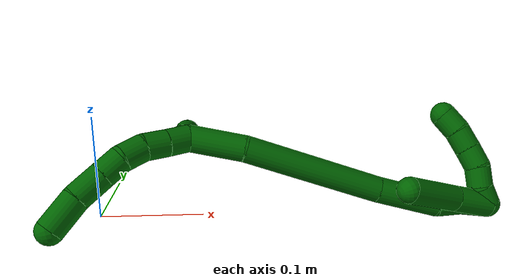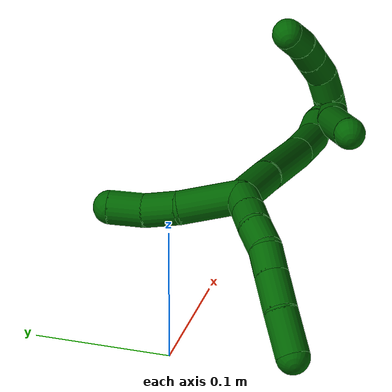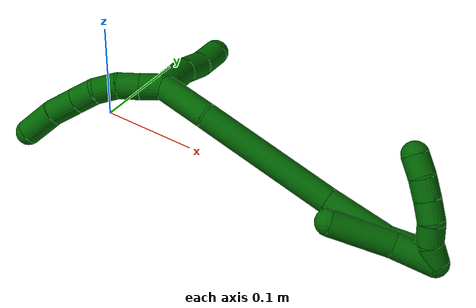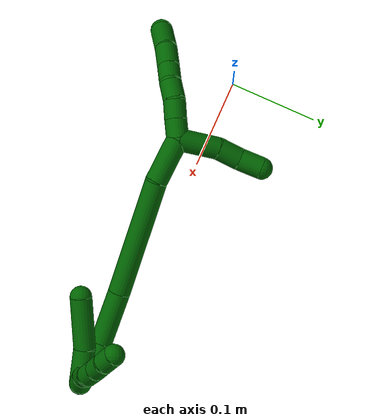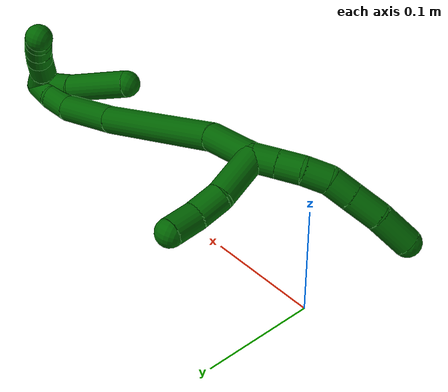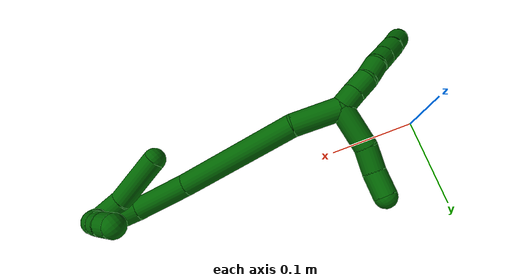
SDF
<sdf version="1.7">
 <world name="default">
  <model name="6">
   <static>0</static>
   <link name="6">
    <collision name="collision-cylinder-e_1_2_8">
     <pose>-0.000379 -0.00167 -0.01076 2.98758 -0.034787 -0.44346</pose>
     <geometry><cylinder><radius>0.0125</radius><length>0.021791</length></cylinder></geometry>
     <surface>
      <friction><ode><mu>1.16</mu><mu2>1.16</mu2><slip1>0</slip1><slip2>0</slip2></ode></friction>
      <contact><ode><kp>1e+06</kp><kd>1</kd><max_vel>0</max_vel><min_depth>0.001</min_depth></ode></contact>
     </surface>
    </collision>
    <visual name="visual-cylinder-e_1_2_8">
     <pose>-0.000379 -0.00167 -0.01076 2.98758 -0.034787 -0.44346</pose>
     <geometry><cylinder><radius>0.0125</radius><length>0.021791</length></cylinder></geometry>
     <material><ambient>0 0.392157 0.003922 1</ambient></material>
    </visual>
    <collision name="collision-cylinder-e_2_8_9">
     <pose>-0.001469 -0.004781 -0.032241 3.00804 -0.065629 -0.912621</pose>
     <geometry><cylinder><radius>0.0125</radius><length>0.021682</length></cylinder></geometry>
     <surface>
      <friction><ode><mu>1.16</mu><mu2>1.16</mu2><slip1>0</slip1><slip2>0</slip2></ode></friction>
      <contact><ode><kp>1e+06</kp><kd>1</kd><max_vel>0</max_vel><min_depth>0.001</min_depth></ode></contact>
     </surface>
    </collision>
    <visual name="visual-cylinder-e_2_8_9">
     <pose>-0.001469 -0.004781 -0.032241 3.00804 -0.065629 -0.912621</pose>
     <geometry><cylinder><radius>0.0125</radius><length>0.021682</length></cylinder></geometry>
     <material><ambient>0 0.392157 0.003922 1</ambient></material>
    </visual>
    <collision name="collision-cylinder-e_3_9_10">
     <pose>0.00014 -0.007816 -0.05373 2.99463 0.210013 1.92218</pose>
     <geometry><cylinder><radius>0.0125</radius><length>0.022259</length></cylinder></geometry>
     <surface>
      <friction><ode><mu>1.16</mu><mu2>1.16</mu2><slip1>0</slip1><slip2>0</slip2></ode></friction>
      <contact><ode><kp>1e+06</kp><kd>1</kd><max_vel>0</max_vel><min_depth>0.001</min_depth></ode></contact>
     </surface>
    </collision>
    <visual name="visual-cylinder-e_3_9_10">
     <pose>0.00014 -0.007816 -0.05373 2.99463 0.210013 1.92218</pose>
     <geometry><cylinder><radius>0.0125</radius><length>0.022259</length></cylinder></geometry>
     <material><ambient>0 0.392157 0.003922 1</ambient></material>
    </visual>
    <collision name="collision-cylinder-e_4_10_11">
     <pose>0.006925 -0.008512 -0.074248 -3.04974 0.427794 -2.72461</pose>
     <geometry><cylinder><radius>0.0125</radius><length>0.021524</length></cylinder></geometry>
     <surface>
      <friction><ode><mu>1.16</mu><mu2>1.16</mu2><slip1>0</slip1><slip2>0</slip2></ode></friction>
      <contact><ode><kp>1e+06</kp><kd>1</kd><max_vel>0</max_vel><min_depth>0.001</min_depth></ode></contact>
     </surface>
    </collision>
    <visual name="visual-cylinder-e_4_10_11">
     <pose>0.006925 -0.008512 -0.074248 -3.04974 0.427794 -2.72461</pose>
     <geometry><cylinder><radius>0.0125</radius><length>0.021524</length></cylinder></geometry>
     <material><ambient>0 0.392157 0.003922 1</ambient></material>
    </visual>
    <collision name="collision-cylinder-e_5_11_12">
     <pose>0.017389 -0.006546 -0.096913 -3.05909 0.433599 -2.77113</pose>
     <geometry><cylinder><radius>0.0125</radius><length>0.02856</length></cylinder></geometry>
     <surface>
      <friction><ode><mu>1.16</mu><mu2>1.16</mu2><slip1>0</slip1><slip2>0</slip2></ode></friction>
      <contact><ode><kp>1e+06</kp><kd>1</kd><max_vel>0</max_vel><min_depth>0.001</min_depth></ode></contact>
     </surface>
    </collision>
    <visual name="visual-cylinder-e_5_11_12">
     <pose>0.017389 -0.006546 -0.096913 -3.05909 0.433599 -2.77113</pose>
     <geometry><cylinder><radius>0.0125</radius><length>0.02856</length></cylinder></geometry>
     <material><ambient>0 0.392157 0.003922 1</ambient></material>
    </visual>
    <collision name="collision-cylinder-e_6_12_6">
     <pose>0.03308 -0.003757 -0.123802 -3.01908 0.602824 -2.75201</pose>
     <geometry><cylinder><radius>0.0125</radius><length>0.034185</length></cylinder></geometry>
     <surface>
      <friction><ode><mu>1.16</mu><mu2>1.16</mu2><slip1>0</slip1><slip2>0</slip2></ode></friction>
      <contact><ode><kp>1e+06</kp><kd>1</kd><max_vel>0</max_vel><min_depth>0.001</min_depth></ode></contact>
     </surface>
    </collision>
    <visual name="visual-cylinder-e_6_12_6">
     <pose>0.03308 -0.003757 -0.123802 -3.01908 0.602824 -2.75201</pose>
     <geometry><cylinder><radius>0.0125</radius><length>0.034185</length></cylinder></geometry>
     <material><ambient>0 0.392157 0.003922 1</ambient></material>
    </visual>
    <collision name="collision-cylinder-e_1_2_13">
     <pose>-0.004769 0.022566 0.002941 -1.4412 -0.206568 0.181542</pose>
     <geometry><cylinder><radius>0.0125</radius><length>0.046502</length></cylinder></geometry>
     <surface>
      <friction><ode><mu>1.16</mu><mu2>1.16</mu2><slip1>0</slip1><slip2>0</slip2></ode></friction>
      <contact><ode><kp>1e+06</kp><kd>1</kd><max_vel>0</max_vel><min_depth>0.001</min_depth></ode></contact>
     </surface>
    </collision>
    <visual name="visual-cylinder-e_1_2_13">
     <pose>-0.004769 0.022566 0.002941 -1.4412 -0.206568 0.181542</pose>
     <geometry><cylinder><radius>0.0125</radius><length>0.046502</length></cylinder></geometry>
     <material><ambient>0 0.392157 0.003922 1</ambient></material>
    </visual>
    <collision name="collision-cylinder-e_2_13_14">
     <pose>-0.011207 0.057466 0.010548 -1.20911 -0.125901 0.087038</pose>
     <geometry><cylinder><radius>0.0125</radius><length>0.026586</length></cylinder></geometry>
     <surface>
      <friction><ode><mu>1.16</mu><mu2>1.16</mu2><slip1>0</slip1><slip2>0</slip2></ode></friction>
      <contact><ode><kp>1e+06</kp><kd>1</kd><max_vel>0</max_vel><min_depth>0.001</min_depth></ode></contact>
     </surface>
    </collision>
    <visual name="visual-cylinder-e_2_13_14">
     <pose>-0.011207 0.057466 0.010548 -1.20911 -0.125901 0.087038</pose>
     <geometry><cylinder><radius>0.0125</radius><length>0.026586</length></cylinder></geometry>
     <material><ambient>0 0.392157 0.003922 1</ambient></material>
    </visual>
    <collision name="collision-cylinder-e_3_14_5">
     <pose>-0.017476 0.081549 0.019891 -1.19195 -0.348913 0.23795</pose>
     <geometry><cylinder><radius>0.0125</radius><length>0.026912</length></cylinder></geometry>
     <surface>
      <friction><ode><mu>1.16</mu><mu2>1.16</mu2><slip1>0</slip1><slip2>0</slip2></ode></friction>
      <contact><ode><kp>1e+06</kp><kd>1</kd><max_vel>0</max_vel><min_depth>0.001</min_depth></ode></contact>
     </surface>
    </collision>
    <visual name="visual-cylinder-e_3_14_5">
     <pose>-0.017476 0.081549 0.019891 -1.19195 -0.348913 0.23795</pose>
     <geometry><cylinder><radius>0.0125</radius><length>0.026912</length></cylinder></geometry>
     <material><ambient>0 0.392157 0.003922 1</ambient></material>
    </visual>
    <collision name="collision-cylinder-e_1_2_15">
     <pose>0.012826 -0.006146 0.021891 0.273721 0.513584 0.072297</pose>
     <geometry><cylinder><radius>0.0125</radius><length>0.05221</length></cylinder></geometry>
     <surface>
      <friction><ode><mu>1.16</mu><mu2>1.16</mu2><slip1>0</slip1><slip2>0</slip2></ode></friction>
      <contact><ode><kp>1e+06</kp><kd>1</kd><max_vel>0</max_vel><min_depth>0.001</min_depth></ode></contact>
     </surface>
    </collision>
    <visual name="visual-cylinder-e_1_2_15">
     <pose>0.012826 -0.006146 0.021891 0.273721 0.513584 0.072297</pose>
     <geometry><cylinder><radius>0.0125</radius><length>0.05221</length></cylinder></geometry>
     <material><ambient>0 0.392157 0.003922 1</ambient></material>
    </visual>
    <collision name="collision-cylinder-e_2_15_16">
     <pose>0.063371 -0.015028 0.099537 0.049016 0.594239 0.01501</pose>
     <geometry><cylinder><radius>0.0125</radius><length>0.134742</length></cylinder></geometry>
     <surface>
      <friction><ode><mu>1.16</mu><mu2>1.16</mu2><slip1>0</slip1><slip2>0</slip2></ode></friction>
      <contact><ode><kp>1e+06</kp><kd>1</kd><max_vel>0</max_vel><min_depth>0.001</min_depth></ode></contact>
     </surface>
    </collision>
    <visual name="visual-cylinder-e_2_15_16">
     <pose>0.063371 -0.015028 0.099537 0.049016 0.594239 0.01501</pose>
     <geometry><cylinder><radius>0.0125</radius><length>0.134742</length></cylinder></geometry>
     <material><ambient>0 0.392157 0.003922 1</ambient></material>
    </visual>
    <collision name="collision-cylinder-e_3_16_17">
     <pose>0.117394 -0.020592 0.182011 0.10551 0.545395 0.029533</pose>
     <geometry><cylinder><radius>0.0125</radius><length>0.062857</length></cylinder></geometry>
     <surface>
      <friction><ode><mu>1.16</mu><mu2>1.16</mu2><slip1>0</slip1><slip2>0</slip2></ode></friction>
      <contact><ode><kp>1e+06</kp><kd>1</kd><max_vel>0</max_vel><min_depth>0.001</min_depth></ode></contact>
     </surface>
    </collision>
    <visual name="visual-cylinder-e_3_16_17">
     <pose>0.117394 -0.020592 0.182011 0.10551 0.545395 0.029533</pose>
     <geometry><cylinder><radius>0.0125</radius><length>0.062857</length></cylinder></geometry>
     <material><ambient>0 0.392157 0.003922 1</ambient></material>
    </visual>
    <collision name="collision-cylinder-e_4_17_18">
     <pose>0.136672 -0.026338 0.220228 0.248404 0.245703 0.030827</pose>
     <geometry><cylinder><radius>0.0125</radius><length>0.024457</length></cylinder></geometry>
     <surface>
      <friction><ode><mu>1.16</mu><mu2>1.16</mu2><slip1>0</slip1><slip2>0</slip2></ode></friction>
      <contact><ode><kp>1e+06</kp><kd>1</kd><max_vel>0</max_vel><min_depth>0.001</min_depth></ode></contact>
     </surface>
    </collision>
    <visual name="visual-cylinder-e_4_17_18">
     <pose>0.136672 -0.026338 0.220228 0.248404 0.245703 0.030827</pose>
     <geometry><cylinder><radius>0.0125</radius><length>0.024457</length></cylinder></geometry>
     <material><ambient>0 0.392157 0.003922 1</ambient></material>
    </visual>
    <collision name="collision-cylinder-e_5_18_1">
     <pose>0.14496 -0.034238 0.242331 0.439258 0.425741 0.096425</pose>
     <geometry><cylinder><radius>0.0125</radius><length>0.025733</length></cylinder></geometry>
     <surface>
      <friction><ode><mu>1.16</mu><mu2>1.16</mu2><slip1>0</slip1><slip2>0</slip2></ode></friction>
      <contact><ode><kp>1e+06</kp><kd>1</kd><max_vel>0</max_vel><min_depth>0.001</min_depth></ode></contact>
     </surface>
    </collision>
    <visual name="visual-cylinder-e_5_18_1">
     <pose>0.14496 -0.034238 0.242331 0.439258 0.425741 0.096425</pose>
     <geometry><cylinder><radius>0.0125</radius><length>0.025733</length></cylinder></geometry>
     <material><ambient>0 0.392157 0.003922 1</ambient></material>
    </visual>
    <collision name="collision-cylinder-e_1_1_19">
     <pose>0.141729 -0.041099 0.234758 3.03867 -0.437388 -2.68611</pose>
     <geometry><cylinder><radius>0.0125</radius><length>0.04035</length></cylinder></geometry>
     <surface>
      <friction><ode><mu>1.16</mu><mu2>1.16</mu2><slip1>0</slip1><slip2>0</slip2></ode></friction>
      <contact><ode><kp>1e+06</kp><kd>1</kd><max_vel>0</max_vel><min_depth>0.001</min_depth></ode></contact>
     </surface>
    </collision>
    <visual name="visual-cylinder-e_1_1_19">
     <pose>0.141729 -0.041099 0.234758 3.03867 -0.437388 -2.68611</pose>
     <geometry><cylinder><radius>0.0125</radius><length>0.04035</length></cylinder></geometry>
     <material><ambient>0 0.392157 0.003922 1</ambient></material>
    </visual>
    <collision name="collision-cylinder-e_2_19_4">
     <pose>0.122085 -0.051322 0.190183 2.83536 -0.381265 -1.79248</pose>
     <geometry><cylinder><radius>0.0125</radius><length>0.05965</length></cylinder></geometry>
     <surface>
      <friction><ode><mu>1.16</mu><mu2>1.16</mu2><slip1>0</slip1><slip2>0</slip2></ode></friction>
      <contact><ode><kp>1e+06</kp><kd>1</kd><max_vel>0</max_vel><min_depth>0.001</min_depth></ode></contact>
     </surface>
    </collision>
    <visual name="visual-cylinder-e_2_19_4">
     <pose>0.122085 -0.051322 0.190183 2.83536 -0.381265 -1.79248</pose>
     <geometry><cylinder><radius>0.0125</radius><length>0.05965</length></cylinder></geometry>
     <material><ambient>0 0.392157 0.003922 1</ambient></material>
    </visual>
    <collision name="collision-cylinder-e_1_1_20">
     <pose>0.140834 -0.041733 0.250798 2.27607 -1.23458 -1.98769</pose>
     <geometry><cylinder><radius>0.0125</radius><length>0.02</length></cylinder></geometry>
     <surface>
      <friction><ode><mu>1.16</mu><mu2>1.16</mu2><slip1>0</slip1><slip2>0</slip2></ode></friction>
      <contact><ode><kp>1e+06</kp><kd>1</kd><max_vel>0</max_vel><min_depth>0.001</min_depth></ode></contact>
     </surface>
    </collision>
    <visual name="visual-cylinder-e_1_1_20">
     <pose>0.140834 -0.041733 0.250798 2.27607 -1.23458 -1.98769</pose>
     <geometry><cylinder><radius>0.0125</radius><length>0.02</length></cylinder></geometry>
     <material><ambient>0 0.392157 0.003922 1</ambient></material>
    </visual>
    <collision name="collision-cylinder-e_2_20_21">
     <pose>0.121638 -0.046116 0.249812 1.01862 -1.34926 -0.840155</pose>
     <geometry><cylinder><radius>0.0125</radius><length>0.02</length></cylinder></geometry>
     <surface>
      <friction><ode><mu>1.16</mu><mu2>1.16</mu2><slip1>0</slip1><slip2>0</slip2></ode></friction>
      <contact><ode><kp>1e+06</kp><kd>1</kd><max_vel>0</max_vel><min_depth>0.001</min_depth></ode></contact>
     </surface>
    </collision>
    <visual name="visual-cylinder-e_2_20_21">
     <pose>0.121638 -0.046116 0.249812 1.01862 -1.34926 -0.840155</pose>
     <geometry><cylinder><radius>0.0125</radius><length>0.02</length></cylinder></geometry>
     <material><ambient>0 0.392157 0.003922 1</ambient></material>
    </visual>
    <collision name="collision-cylinder-e_3_21_22">
     <pose>0.102017 -0.047769 0.249345 -3.00787 -1.40671 2.98401</pose>
     <geometry><cylinder><radius>0.0125</radius><length>0.02</length></cylinder></geometry>
     <surface>
      <friction><ode><mu>1.16</mu><mu2>1.16</mu2><slip1>0</slip1><slip2>0</slip2></ode></friction>
      <contact><ode><kp>1e+06</kp><kd>1</kd><max_vel>0</max_vel><min_depth>0.001</min_depth></ode></contact>
     </surface>
    </collision>
    <visual name="visual-cylinder-e_3_21_22">
     <pose>0.102017 -0.047769 0.249345 -3.00787 -1.40671 2.98401</pose>
     <geometry><cylinder><radius>0.0125</radius><length>0.02</length></cylinder></geometry>
     <material><ambient>0 0.392157 0.003922 1</ambient></material>
    </visual>
    <collision name="collision-cylinder-e_4_22_23">
     <pose>0.082367 -0.047471 0.245662 -3.10292 -1.36266 3.0939</pose>
     <geometry><cylinder><radius>0.0125</radius><length>0.02</length></cylinder></geometry>
     <surface>
      <friction><ode><mu>1.16</mu><mu2>1.16</mu2><slip1>0</slip1><slip2>0</slip2></ode></friction>
      <contact><ode><kp>1e+06</kp><kd>1</kd><max_vel>0</max_vel><min_depth>0.001</min_depth></ode></contact>
     </surface>
    </collision>
    <visual name="visual-cylinder-e_4_22_23">
     <pose>0.082367 -0.047471 0.245662 -3.10292 -1.36266 3.0939</pose>
     <geometry><cylinder><radius>0.0125</radius><length>0.02</length></cylinder></geometry>
     <material><ambient>0 0.392157 0.003922 1</ambient></material>
    </visual>
    <collision name="collision-cylinder-e_5_23_3">
     <pose>0.063254 -0.0457 0.240417 -2.6528 -1.2024 2.44414</pose>
     <geometry><cylinder><radius>0.0125</radius><length>0.02</length></cylinder></geometry>
     <surface>
      <friction><ode><mu>1.16</mu><mu2>1.16</mu2><slip1>0</slip1><slip2>0</slip2></ode></friction>
      <contact><ode><kp>1e+06</kp><kd>1</kd><max_vel>0</max_vel><min_depth>0.001</min_depth></ode></contact>
     </surface>
    </collision>
    <visual name="visual-cylinder-e_5_23_3">
     <pose>0.063254 -0.0457 0.240417 -2.6528 -1.2024 2.44414</pose>
     <geometry><cylinder><radius>0.0125</radius><length>0.02</length></cylinder></geometry>
     <material><ambient>0 0.392157 0.003922 1</ambient></material>
    </visual>
    <collision name="collision-sphere-3">
     <pose>0.053925 -0.044009 0.237238 0 -0 0</pose>
     <geometry><sphere><radius>0.0125</radius></sphere></geometry>
     <surface>
      <friction><ode><mu>1.16</mu><mu2>1.16</mu2><slip1>0</slip1><slip2>0</slip2></ode></friction>
      <contact><ode><kp>1e+06</kp><kd>1</kd><max_vel>0</max_vel><min_depth>0.001</min_depth></ode></contact>
     </surface>
    </collision>
    <visual name="visual-sphere-3">
     <pose>0.053925 -0.044009 0.237238 0 -0 0</pose>
     <geometry><sphere><radius>0.0125</radius></sphere></geometry>
     <material><ambient>0 0.392157 0.003922 1</ambient></material>
    </visual>
    <collision name="collision-sphere-23">
     <pose>0.072583 -0.047391 0.243597 0 -0 0</pose>
     <geometry><sphere><radius>0.0125</radius></sphere></geometry>
     <surface>
      <friction><ode><mu>1.16</mu><mu2>1.16</mu2><slip1>0</slip1><slip2>0</slip2></ode></friction>
      <contact><ode><kp>1e+06</kp><kd>1</kd><max_vel>0</max_vel><min_depth>0.001</min_depth></ode></contact>
     </surface>
    </collision>
    <visual name="visual-sphere-23">
     <pose>0.072583 -0.047391 0.243597 0 -0 0</pose>
     <geometry><sphere><radius>0.0125</radius></sphere></geometry>
     <material><ambient>0 0.392157 0.003922 1</ambient></material>
    </visual>
    <collision name="collision-sphere-22">
     <pose>0.092151 -0.047551 0.247726 0 -0 0</pose>
     <geometry><sphere><radius>0.0125</radius></sphere></geometry>
     <surface>
      <friction><ode><mu>1.16</mu><mu2>1.16</mu2><slip1>0</slip1><slip2>0</slip2></ode></friction>
      <contact><ode><kp>1e+06</kp><kd>1</kd><max_vel>0</max_vel><min_depth>0.001</min_depth></ode></contact>
     </surface>
    </collision>
    <visual name="visual-sphere-22">
     <pose>0.092151 -0.047551 0.247726 0 -0 0</pose>
     <geometry><sphere><radius>0.0125</radius></sphere></geometry>
     <material><ambient>0 0.392157 0.003922 1</ambient></material>
    </visual>
    <collision name="collision-sphere-21">
     <pose>0.111883 -0.047987 0.250964 0 -0 0</pose>
     <geometry><sphere><radius>0.0125</radius></sphere></geometry>
     <surface>
      <friction><ode><mu>1.16</mu><mu2>1.16</mu2><slip1>0</slip1><slip2>0</slip2></ode></friction>
      <contact><ode><kp>1e+06</kp><kd>1</kd><max_vel>0</max_vel><min_depth>0.001</min_depth></ode></contact>
     </surface>
    </collision>
    <visual name="visual-sphere-21">
     <pose>0.111883 -0.047987 0.250964 0 -0 0</pose>
     <geometry><sphere><radius>0.0125</radius></sphere></geometry>
     <material><ambient>0 0.392157 0.003922 1</ambient></material>
    </visual>
    <collision name="collision-sphere-20">
     <pose>0.131394 -0.044245 0.248659 0 -0 0</pose>
     <geometry><sphere><radius>0.0125</radius></sphere></geometry>
     <surface>
      <friction><ode><mu>1.16</mu><mu2>1.16</mu2><slip1>0</slip1><slip2>0</slip2></ode></friction>
      <contact><ode><kp>1e+06</kp><kd>1</kd><max_vel>0</max_vel><min_depth>0.001</min_depth></ode></contact>
     </surface>
    </collision>
    <visual name="visual-sphere-20">
     <pose>0.131394 -0.044245 0.248659 0 -0 0</pose>
     <geometry><sphere><radius>0.0125</radius></sphere></geometry>
     <material><ambient>0 0.392157 0.003922 1</ambient></material>
    </visual>
    <collision name="collision-sphere-4">
     <pose>0.110988 -0.059668 0.163787 0 -0 0</pose>
     <geometry><sphere><radius>0.0125</radius></sphere></geometry>
     <surface>
      <friction><ode><mu>1.16</mu><mu2>1.16</mu2><slip1>0</slip1><slip2>0</slip2></ode></friction>
      <contact><ode><kp>1e+06</kp><kd>1</kd><max_vel>0</max_vel><min_depth>0.001</min_depth></ode></contact>
     </surface>
    </collision>
    <visual name="visual-sphere-4">
     <pose>0.110988 -0.059668 0.163787 0 -0 0</pose>
     <geometry><sphere><radius>0.0125</radius></sphere></geometry>
     <material><ambient>0 0.392157 0.003922 1</ambient></material>
    </visual>
    <collision name="collision-sphere-12">
     <pose>0.023389 -0.005478 -0.109828 0 -0 0</pose>
     <geometry><sphere><radius>0.0125</radius></sphere></geometry>
     <surface>
      <friction><ode><mu>1.16</mu><mu2>1.16</mu2><slip1>0</slip1><slip2>0</slip2></ode></friction>
      <contact><ode><kp>1e+06</kp><kd>1</kd><max_vel>0</max_vel><min_depth>0.001</min_depth></ode></contact>
     </surface>
    </collision>
    <visual name="visual-sphere-12">
     <pose>0.023389 -0.005478 -0.109828 0 -0 0</pose>
     <geometry><sphere><radius>0.0125</radius></sphere></geometry>
     <material><ambient>0 0.392157 0.003922 1</ambient></material>
    </visual>
    <collision name="collision-sphere-11">
     <pose>0.01139 -0.007613 -0.083999 0 -0 0</pose>
     <geometry><sphere><radius>0.0125</radius></sphere></geometry>
     <surface>
      <friction><ode><mu>1.16</mu><mu2>1.16</mu2><slip1>0</slip1><slip2>0</slip2></ode></friction>
      <contact><ode><kp>1e+06</kp><kd>1</kd><max_vel>0</max_vel><min_depth>0.001</min_depth></ode></contact>
     </surface>
    </collision>
    <visual name="visual-sphere-11">
     <pose>0.01139 -0.007613 -0.083999 0 -0 0</pose>
     <geometry><sphere><radius>0.0125</radius></sphere></geometry>
     <material><ambient>0 0.392157 0.003922 1</ambient></material>
    </visual>
    <collision name="collision-sphere-10">
     <pose>0.00246 -0.00941 -0.064498 0 -0 0</pose>
     <geometry><sphere><radius>0.0125</radius></sphere></geometry>
     <surface>
      <friction><ode><mu>1.16</mu><mu2>1.16</mu2><slip1>0</slip1><slip2>0</slip2></ode></friction>
      <contact><ode><kp>1e+06</kp><kd>1</kd><max_vel>0</max_vel><min_depth>0.001</min_depth></ode></contact>
     </surface>
    </collision>
    <visual name="visual-sphere-10">
     <pose>0.00246 -0.00941 -0.064498 0 -0 0</pose>
     <geometry><sphere><radius>0.0125</radius></sphere></geometry>
     <material><ambient>0 0.392157 0.003922 1</ambient></material>
    </visual>
    <collision name="collision-sphere-9">
     <pose>-0.00218 -0.006222 -0.042963 0 -0 0</pose>
     <geometry><sphere><radius>0.0125</radius></sphere></geometry>
     <surface>
      <friction><ode><mu>1.16</mu><mu2>1.16</mu2><slip1>0</slip1><slip2>0</slip2></ode></friction>
      <contact><ode><kp>1e+06</kp><kd>1</kd><max_vel>0</max_vel><min_depth>0.001</min_depth></ode></contact>
     </surface>
    </collision>
    <visual name="visual-sphere-9">
     <pose>-0.00218 -0.006222 -0.042963 0 -0 0</pose>
     <geometry><sphere><radius>0.0125</radius></sphere></geometry>
     <material><ambient>0 0.392157 0.003922 1</ambient></material>
    </visual>
    <collision name="collision-sphere-2">
     <geometry><sphere><radius>0.0125</radius></sphere></geometry>
     <surface>
      <friction><ode><mu>1.16</mu><mu2>1.16</mu2><slip1>0</slip1><slip2>0</slip2></ode></friction>
      <contact><ode><kp>1e+06</kp><kd>1</kd><max_vel>0</max_vel><min_depth>0.001</min_depth></ode></contact>
     </surface>
    </collision>
    <visual name="visual-sphere-2">
     <geometry><sphere><radius>0.0125</radius></sphere></geometry>
     <material><ambient>0 0.392157 0.003922 1</ambient></material>
    </visual>
    <collision name="collision-sphere-19">
     <pose>0.133183 -0.042976 0.216579 0 -0 0</pose>
     <geometry><sphere><radius>0.0125</radius></sphere></geometry>
     <surface>
      <friction><ode><mu>1.16</mu><mu2>1.16</mu2><slip1>0</slip1><slip2>0</slip2></ode></friction>
      <contact><ode><kp>1e+06</kp><kd>1</kd><max_vel>0</max_vel><min_depth>0.001</min_depth></ode></contact>
     </surface>
    </collision>
    <visual name="visual-sphere-19">
     <pose>0.133183 -0.042976 0.216579 0 -0 0</pose>
     <geometry><sphere><radius>0.0125</radius></sphere></geometry>
     <material><ambient>0 0.392157 0.003922 1</ambient></material>
    </visual>
    <collision name="collision-sphere-8">
     <pose>-0.000758 -0.003341 -0.02152 0 -0 0</pose>
     <geometry><sphere><radius>0.0125</radius></sphere></geometry>
     <surface>
      <friction><ode><mu>1.16</mu><mu2>1.16</mu2><slip1>0</slip1><slip2>0</slip2></ode></friction>
      <contact><ode><kp>1e+06</kp><kd>1</kd><max_vel>0</max_vel><min_depth>0.001</min_depth></ode></contact>
     </surface>
    </collision>
    <visual name="visual-sphere-8">
     <pose>-0.000758 -0.003341 -0.02152 0 -0 0</pose>
     <geometry><sphere><radius>0.0125</radius></sphere></geometry>
     <material><ambient>0 0.392157 0.003922 1</ambient></material>
    </visual>
    <collision name="collision-sphere-6">
     <pose>0.042771 -0.002036 -0.137776 0 -0 0</pose>
     <geometry><sphere><radius>0.0125</radius></sphere></geometry>
     <surface>
      <friction><ode><mu>1.16</mu><mu2>1.16</mu2><slip1>0</slip1><slip2>0</slip2></ode></friction>
      <contact><ode><kp>1e+06</kp><kd>1</kd><max_vel>0</max_vel><min_depth>0.001</min_depth></ode></contact>
     </surface>
    </collision>
    <visual name="visual-sphere-6">
     <pose>0.042771 -0.002036 -0.137776 0 -0 0</pose>
     <geometry><sphere><radius>0.0125</radius></sphere></geometry>
     <material><ambient>0 0.392157 0.003922 1</ambient></material>
    </visual>
    <collision name="collision-sphere-13">
     <pose>-0.009538 0.045132 0.005882 0 -0 0</pose>
     <geometry><sphere><radius>0.0125</radius></sphere></geometry>
     <surface>
      <friction><ode><mu>1.16</mu><mu2>1.16</mu2><slip1>0</slip1><slip2>0</slip2></ode></friction>
      <contact><ode><kp>1e+06</kp><kd>1</kd><max_vel>0</max_vel><min_depth>0.001</min_depth></ode></contact>
     </surface>
    </collision>
    <visual name="visual-sphere-13">
     <pose>-0.009538 0.045132 0.005882 0 -0 0</pose>
     <geometry><sphere><radius>0.0125</radius></sphere></geometry>
     <material><ambient>0 0.392157 0.003922 1</ambient></material>
    </visual>
    <collision name="collision-sphere-14">
     <pose>-0.012876 0.069801 0.015215 0 -0 0</pose>
     <geometry><sphere><radius>0.0125</radius></sphere></geometry>
     <surface>
      <friction><ode><mu>1.16</mu><mu2>1.16</mu2><slip1>0</slip1><slip2>0</slip2></ode></friction>
      <contact><ode><kp>1e+06</kp><kd>1</kd><max_vel>0</max_vel><min_depth>0.001</min_depth></ode></contact>
     </surface>
    </collision>
    <visual name="visual-sphere-14">
     <pose>-0.012876 0.069801 0.015215 0 -0 0</pose>
     <geometry><sphere><radius>0.0125</radius></sphere></geometry>
     <material><ambient>0 0.392157 0.003922 1</ambient></material>
    </visual>
    <collision name="collision-sphere-5">
     <pose>-0.022077 0.093298 0.024568 0 -0 0</pose>
     <geometry><sphere><radius>0.0125</radius></sphere></geometry>
     <surface>
      <friction><ode><mu>1.16</mu><mu2>1.16</mu2><slip1>0</slip1><slip2>0</slip2></ode></friction>
      <contact><ode><kp>1e+06</kp><kd>1</kd><max_vel>0</max_vel><min_depth>0.001</min_depth></ode></contact>
     </surface>
    </collision>
    <visual name="visual-sphere-5">
     <pose>-0.022077 0.093298 0.024568 0 -0 0</pose>
     <geometry><sphere><radius>0.0125</radius></sphere></geometry>
     <material><ambient>0 0.392157 0.003922 1</ambient></material>
    </visual>
    <collision name="collision-sphere-15">
     <pose>0.025651 -0.012292 0.043782 0 -0 0</pose>
     <geometry><sphere><radius>0.0125</radius></sphere></geometry>
     <surface>
      <friction><ode><mu>1.16</mu><mu2>1.16</mu2><slip1>0</slip1><slip2>0</slip2></ode></friction>
      <contact><ode><kp>1e+06</kp><kd>1</kd><max_vel>0</max_vel><min_depth>0.001</min_depth></ode></contact>
     </surface>
    </collision>
    <visual name="visual-sphere-15">
     <pose>0.025651 -0.012292 0.043782 0 -0 0</pose>
     <geometry><sphere><radius>0.0125</radius></sphere></geometry>
     <material><ambient>0 0.392157 0.003922 1</ambient></material>
    </visual>
    <collision name="collision-sphere-16">
     <pose>0.10109 -0.017763 0.155292 0 -0 0</pose>
     <geometry><sphere><radius>0.0125</radius></sphere></geometry>
     <surface>
      <friction><ode><mu>1.16</mu><mu2>1.16</mu2><slip1>0</slip1><slip2>0</slip2></ode></friction>
      <contact><ode><kp>1e+06</kp><kd>1</kd><max_vel>0</max_vel><min_depth>0.001</min_depth></ode></contact>
     </surface>
    </collision>
    <visual name="visual-sphere-16">
     <pose>0.10109 -0.017763 0.155292 0 -0 0</pose>
     <geometry><sphere><radius>0.0125</radius></sphere></geometry>
     <material><ambient>0 0.392157 0.003922 1</ambient></material>
    </visual>
    <collision name="collision-sphere-17">
     <pose>0.133698 -0.023422 0.20873 0 -0 0</pose>
     <geometry><sphere><radius>0.0125</radius></sphere></geometry>
     <surface>
      <friction><ode><mu>1.16</mu><mu2>1.16</mu2><slip1>0</slip1><slip2>0</slip2></ode></friction>
      <contact><ode><kp>1e+06</kp><kd>1</kd><max_vel>0</max_vel><min_depth>0.001</min_depth></ode></contact>
     </surface>
    </collision>
    <visual name="visual-sphere-17">
     <pose>0.133698 -0.023422 0.20873 0 -0 0</pose>
     <geometry><sphere><radius>0.0125</radius></sphere></geometry>
     <material><ambient>0 0.392157 0.003922 1</ambient></material>
    </visual>
    <collision name="collision-sphere-18">
     <pose>0.139647 -0.029254 0.231725 0 -0 0</pose>
     <geometry><sphere><radius>0.0125</radius></sphere></geometry>
     <surface>
      <friction><ode><mu>1.16</mu><mu2>1.16</mu2><slip1>0</slip1><slip2>0</slip2></ode></friction>
      <contact><ode><kp>1e+06</kp><kd>1</kd><max_vel>0</max_vel><min_depth>0.001</min_depth></ode></contact>
     </surface>
    </collision>
    <visual name="visual-sphere-18">
     <pose>0.139647 -0.029254 0.231725 0 -0 0</pose>
     <geometry><sphere><radius>0.0125</radius></sphere></geometry>
     <material><ambient>0 0.392157 0.003922 1</ambient></material>
    </visual>
    <collision name="collision-sphere-1">
     <pose>0.150274 -0.039221 0.252936 0 -0 0</pose>
     <geometry><sphere><radius>0.0125</radius></sphere></geometry>
     <surface>
      <friction><ode><mu>1.16</mu><mu2>1.16</mu2><slip1>0</slip1><slip2>0</slip2></ode></friction>
      <contact><ode><kp>1e+06</kp><kd>1</kd><max_vel>0</max_vel><min_depth>0.001</min_depth></ode></contact>
     </surface>
    </collision>
    <visual name="visual-sphere-1">
     <pose>0.150274 -0.039221 0.252936 0 -0 0</pose>
     <geometry><sphere><radius>0.0125</radius></sphere></geometry>
     <material><ambient>0 0.392157 0.003922 1</ambient></material>
    </visual>
    <inertial>
     <pose>0.063484 -0.014002 0.09784 0 -0 0</pose>
     <mass>0.75</mass>
     <inertia>
      <ixx>0.000193</ixx>
      <ixy>0</ixy>
      <ixz>0</ixz>
      <iyy>0.000265</iyy>
      <iyz>0</iyz>
      <izz>-0.000112</izz>
     </inertia>
    </inertial>
   </link>
   <pose>0.092099 -0.026564 0.085445 -1.2266 1.07467 -0.866823</pose>
  </model>
 </world>
</sdf>
